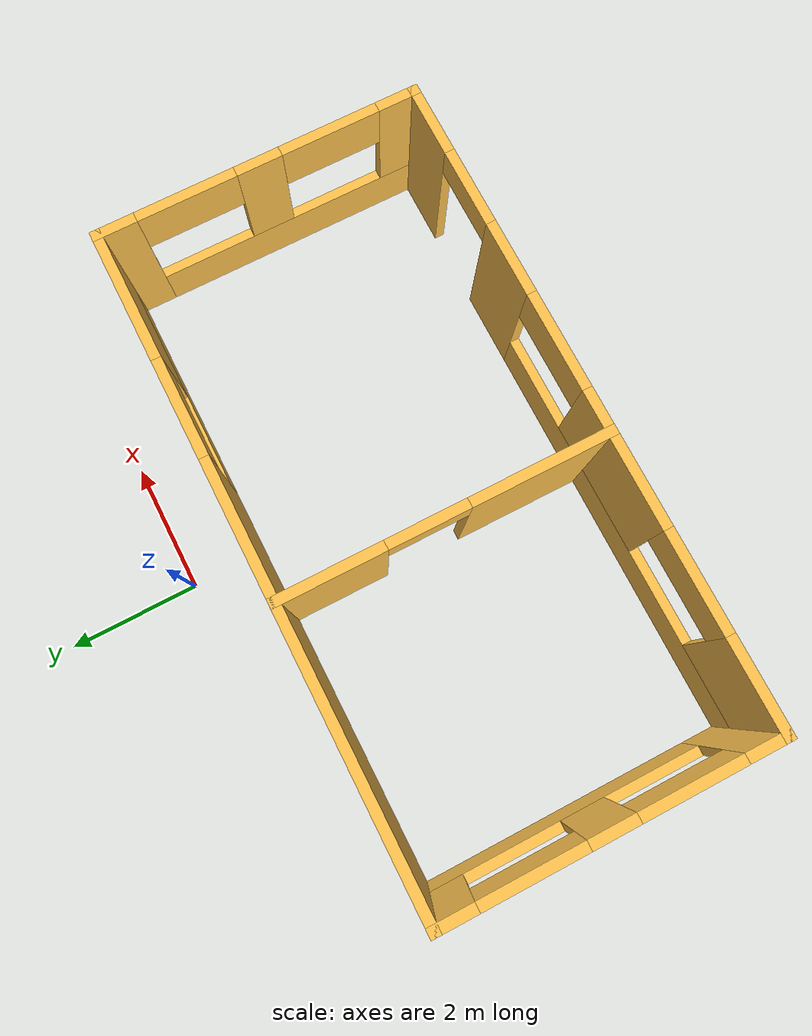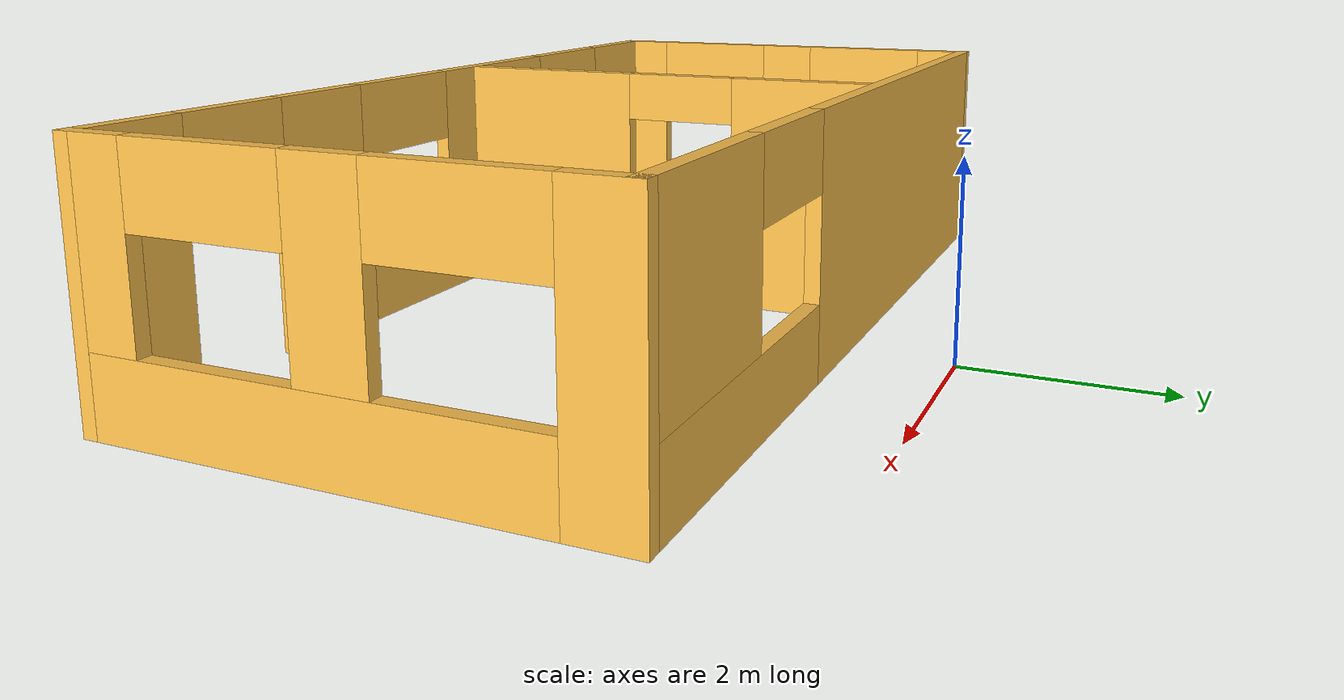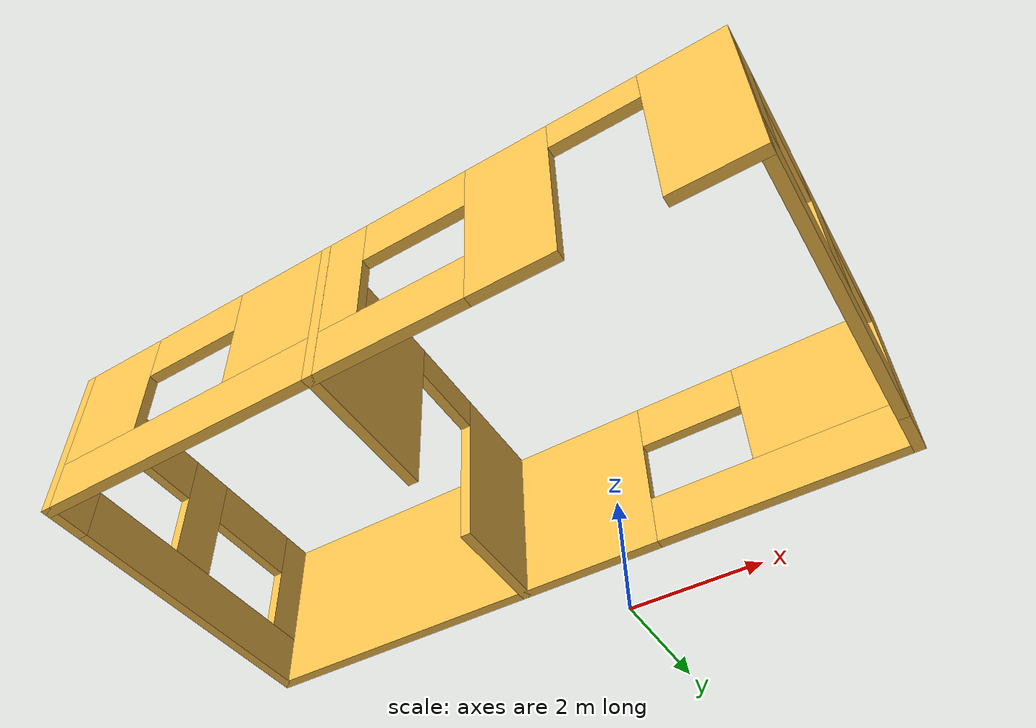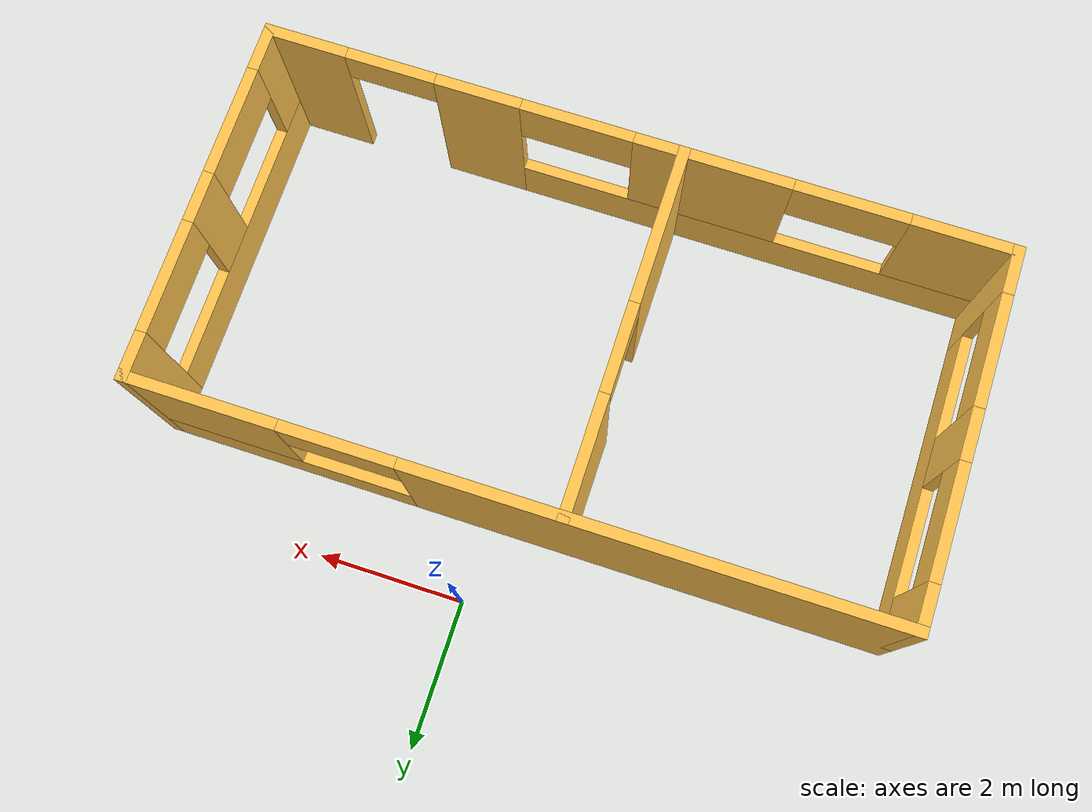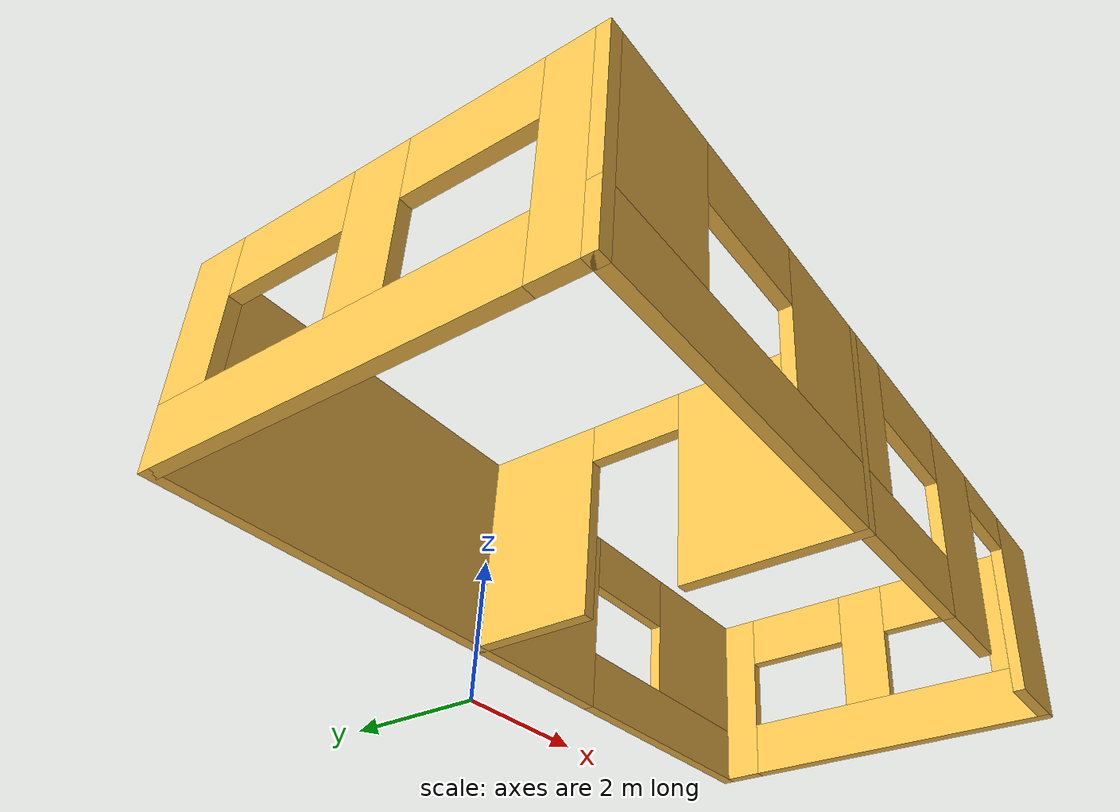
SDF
<?xml version='1.0'?>
<sdf version='1.6'>
  <model name='mybuilding'>
    <pose frame=''>-0.455 -3.52538 0 0 -0 0</pose>
    <link name='Wall_1'>
      <pose frame=''>0 2.42538 0 0 -0 0</pose>
      <visual name='Wall_1_Visual_0'>
        <pose frame=''>-1.77544 0 1.25 0 -0 0</pose>
        <geometry>
          <box>
            <size>6.44911 0.15 2.5</size>
          </box>
        </geometry>
        <material>
          <script>
            <uri>file://media/materials/scripts/gazebo.material</uri>
            <name>Gazebo/Grey</name>
          </script>
          <ambient>1 0.764706 0.305882 1</ambient>
        </material>
        <meta>
          <layer>0</layer>
        </meta>
      </visual>
      <collision name='Wall_1_Collision_0'>
        <geometry>
          <box>
            <size>6.44911 0.15 2.5</size>
          </box>
        </geometry>
        <pose frame=''>-1.77544 0 1.25 0 -0 0</pose>
      </collision>
      <visual name='Wall_1_Visual_1'>
        <pose frame=''>3.22456 0 0.375 0 -0 0</pose>
        <geometry>
          <box>
            <size>3.55089 0.15 0.75</size>
          </box>
        </geometry>
        <material>
          <script>
            <uri>file://media/materials/scripts/gazebo.material</uri>
            <name>Gazebo/Grey</name>
          </script>
          <ambient>1 0.764706 0.305882 1</ambient>
        </material>
        <meta>
          <layer>0</layer>
        </meta>
      </visual>
      <collision name='Wall_1_Collision_1'>
        <geometry>
          <box>
            <size>3.55089 0.15 0.75</size>
          </box>
        </geometry>
        <pose frame=''>3.22456 0 0.375 0 -0 0</pose>
      </collision>
      <visual name='Wall_1_Visual_2'>
        <pose frame=''>3.97456 0 1.625 0 -0 0</pose>
        <geometry>
          <box>
            <size>2.05089 0.15 1.75</size>
          </box>
        </geometry>
        <material>
          <script>
            <uri>file://media/materials/scripts/gazebo.material</uri>
            <name>Gazebo/Grey</name>
          </script>
          <ambient>1 0.764706 0.305882 1</ambient>
        </material>
        <meta>
          <layer>0</layer>
        </meta>
      </visual>
      <collision name='Wall_1_Collision_2'>
        <geometry>
          <box>
            <size>2.05089 0.15 1.75</size>
          </box>
        </geometry>
        <pose frame=''>3.97456 0 1.625 0 -0 0</pose>
      </collision>
      <visual name='Wall_1_Visual_3'>
        <pose frame=''>2.19911 0 2.125 0 -0 0</pose>
        <geometry>
          <box>
            <size>1.5 0.15 0.75</size>
          </box>
        </geometry>
        <material>
          <script>
            <uri>file://media/materials/scripts/gazebo.material</uri>
            <name>Gazebo/Grey</name>
          </script>
          <ambient>1 0.764706 0.305882 1</ambient>
        </material>
        <meta>
          <layer>0</layer>
        </meta>
      </visual>
      <collision name='Wall_1_Collision_3'>
        <geometry>
          <box>
            <size>1.5 0.15 0.75</size>
          </box>
        </geometry>
        <pose frame=''>2.19911 0 2.125 0 -0 0</pose>
      </collision>
    </link>
    <link name='Wall_3'>
      <pose frame=''>4.925 0.00038 0 0 0 -1.5708</pose>
      <visual name='Wall_3_Visual_0'>
        <pose frame=''>-2.1725 0 1.25 0 -0 0</pose>
        <geometry>
          <box>
            <size>0.655006 0.15 2.5</size>
          </box>
        </geometry>
        <material>
          <script>
            <uri>file://media/materials/scripts/gazebo.material</uri>
            <name>Gazebo/Grey</name>
          </script>
          <ambient>1 0.764706 0.305882 1</ambient>
        </material>
        <meta>
          <layer>0</layer>
        </meta>
      </visual>
      <collision name='Wall_3_Collision_0'>
        <geometry>
          <box>
            <size>0.655006 0.15 2.5</size>
          </box>
        </geometry>
        <pose frame=''>-2.1725 0 1.25 0 -0 0</pose>
      </collision>
      <visual name='Wall_3_Visual_1'>
        <pose frame=''>0.327503 0 0.375 0 -0 0</pose>
        <geometry>
          <box>
            <size>4.34499 0.15 0.75</size>
          </box>
        </geometry>
        <material>
          <script>
            <uri>file://media/materials/scripts/gazebo.material</uri>
            <name>Gazebo/Grey</name>
          </script>
          <ambient>1 0.764706 0.305882 1</ambient>
        </material>
        <meta>
          <layer>0</layer>
        </meta>
      </visual>
      <collision name='Wall_3_Collision_1'>
        <geometry>
          <box>
            <size>4.34499 0.15 0.75</size>
          </box>
        </geometry>
        <pose frame=''>0.327503 0 0.375 0 -0 0</pose>
      </collision>
      <visual name='Wall_3_Visual_2'>
        <pose frame=''>-0.001866 0 1.625 0 -0 0</pose>
        <geometry>
          <box>
            <size>0.686258 0.15 1.75</size>
          </box>
        </geometry>
        <material>
          <script>
            <uri>file://media/materials/scripts/gazebo.material</uri>
            <name>Gazebo/Grey</name>
          </script>
          <ambient>1 0.764706 0.305882 1</ambient>
        </material>
        <meta>
          <layer>0</layer>
        </meta>
      </visual>
      <collision name='Wall_3_Collision_2'>
        <geometry>
          <box>
            <size>0.686258 0.15 1.75</size>
          </box>
        </geometry>
        <pose frame=''>-0.001866 0 1.625 0 -0 0</pose>
      </collision>
      <visual name='Wall_3_Visual_3'>
        <pose frame=''>2.17063 0 1.625 0 -0 0</pose>
        <geometry>
          <box>
            <size>0.658737 0.15 1.75</size>
          </box>
        </geometry>
        <material>
          <script>
            <uri>file://media/materials/scripts/gazebo.material</uri>
            <name>Gazebo/Grey</name>
          </script>
          <ambient>1 0.764706 0.305882 1</ambient>
        </material>
        <meta>
          <layer>0</layer>
        </meta>
      </visual>
      <collision name='Wall_3_Collision_3'>
        <geometry>
          <box>
            <size>0.658737 0.15 1.75</size>
          </box>
        </geometry>
        <pose frame=''>2.17063 0 1.625 0 -0 0</pose>
      </collision>
      <visual name='Wall_3_Visual_4'>
        <pose frame=''>-1.09499 0 2.125 0 -0 0</pose>
        <geometry>
          <box>
            <size>1.5 0.15 0.75</size>
          </box>
        </geometry>
        <material>
          <script>
            <uri>file://media/materials/scripts/gazebo.material</uri>
            <name>Gazebo/Grey</name>
          </script>
          <ambient>1 0.764706 0.305882 1</ambient>
        </material>
        <meta>
          <layer>0</layer>
        </meta>
      </visual>
      <collision name='Wall_3_Collision_4'>
        <geometry>
          <box>
            <size>1.5 0.15 0.75</size>
          </box>
        </geometry>
        <pose frame=''>-1.09499 0 2.125 0 -0 0</pose>
      </collision>
      <visual name='Wall_3_Visual_5'>
        <pose frame=''>1.09126 0 2.125 0 -0 0</pose>
        <geometry>
          <box>
            <size>1.5 0.15 0.75</size>
          </box>
        </geometry>
        <material>
          <script>
            <uri>file://media/materials/scripts/gazebo.material</uri>
            <name>Gazebo/Grey</name>
          </script>
          <ambient>1 0.764706 0.305882 1</ambient>
        </material>
        <meta>
          <layer>0</layer>
        </meta>
      </visual>
      <collision name='Wall_3_Collision_5'>
        <geometry>
          <box>
            <size>1.5 0.15 0.75</size>
          </box>
        </geometry>
        <pose frame=''>1.09126 0 2.125 0 -0 0</pose>
      </collision>
    </link>
    <link name='Wall_4'>
      <pose frame=''>0 -2.42462 0 0 -0 3.14159</pose>
      <visual name='Wall_4_Visual_0'>
        <pose frame=''>-4.433 0 1.25 0 -0 0</pose>
        <geometry>
          <box>
            <size>1.134 0.15 2.5</size>
          </box>
        </geometry>
        <material>
          <script>
            <uri>file://media/materials/scripts/gazebo.material</uri>
            <name>Gazebo/Grey</name>
          </script>
          <ambient>1 0.764706 0.305882 1</ambient>
        </material>
        <meta>
          <layer>0</layer>
        </meta>
      </visual>
      <collision name='Wall_4_Collision_0'>
        <geometry>
          <box>
            <size>1.134 0.15 2.5</size>
          </box>
        </geometry>
        <pose frame=''>-4.433 0 1.25 0 -0 0</pose>
      </collision>
      <visual name='Wall_4_Visual_1'>
        <pose frame=''>-2.09047 0 1.25 0 -0 0</pose>
        <geometry>
          <box>
            <size>1.15108 0.15 2.5</size>
          </box>
        </geometry>
        <material>
          <script>
            <uri>file://media/materials/scripts/gazebo.material</uri>
            <name>Gazebo/Grey</name>
          </script>
          <ambient>1 0.764706 0.305882 1</ambient>
        </material>
        <meta>
          <layer>0</layer>
        </meta>
      </visual>
      <collision name='Wall_4_Collision_1'>
        <geometry>
          <box>
            <size>1.15108 0.15 2.5</size>
          </box>
        </geometry>
        <pose frame=''>-2.09047 0 1.25 0 -0 0</pose>
      </collision>
      <visual name='Wall_4_Visual_2'>
        <pose frame=''>1.74254 0 0.375 0 -0 0</pose>
        <geometry>
          <box>
            <size>6.51493 0.15 0.75</size>
          </box>
        </geometry>
        <material>
          <script>
            <uri>file://media/materials/scripts/gazebo.material</uri>
            <name>Gazebo/Grey</name>
          </script>
          <ambient>1 0.764706 0.305882 1</ambient>
        </material>
        <meta>
          <layer>0</layer>
        </meta>
      </visual>
      <collision name='Wall_4_Collision_2'>
        <geometry>
          <box>
            <size>6.51493 0.15 0.75</size>
          </box>
        </geometry>
        <pose frame=''>1.74254 0 0.375 0 -0 0</pose>
      </collision>
      <visual name='Wall_4_Visual_3'>
        <pose frame=''>1.02781 0 1.625 0 -0 0</pose>
        <geometry>
          <box>
            <size>2.08546 0.15 1.75</size>
          </box>
        </geometry>
        <material>
          <script>
            <uri>file://media/materials/scripts/gazebo.material</uri>
            <name>Gazebo/Grey</name>
          </script>
          <ambient>1 0.764706 0.305882 1</ambient>
        </material>
        <meta>
          <layer>0</layer>
        </meta>
      </visual>
      <collision name='Wall_4_Collision_3'>
        <geometry>
          <box>
            <size>2.08546 0.15 1.75</size>
          </box>
        </geometry>
        <pose frame=''>1.02781 0 1.625 0 -0 0</pose>
      </collision>
      <visual name='Wall_4_Visual_4'>
        <pose frame=''>4.28527 0 1.625 0 -0 0</pose>
        <geometry>
          <box>
            <size>1.42946 0.15 1.75</size>
          </box>
        </geometry>
        <material>
          <script>
            <uri>file://media/materials/scripts/gazebo.material</uri>
            <name>Gazebo/Grey</name>
          </script>
          <ambient>1 0.764706 0.305882 1</ambient>
        </material>
        <meta>
          <layer>0</layer>
        </meta>
      </visual>
      <collision name='Wall_4_Collision_4'>
        <geometry>
          <box>
            <size>1.42946 0.15 1.75</size>
          </box>
        </geometry>
        <pose frame=''>4.28527 0 1.625 0 -0 0</pose>
      </collision>
      <visual name='Wall_4_Visual_5'>
        <pose frame=''>-0.764926 0 2.125 0 -0 0</pose>
        <geometry>
          <box>
            <size>1.5 0.15 0.75</size>
          </box>
        </geometry>
        <material>
          <script>
            <uri>file://media/materials/scripts/gazebo.material</uri>
            <name>Gazebo/Grey</name>
          </script>
          <ambient>1 0.764706 0.305882 1</ambient>
        </material>
        <meta>
          <layer>0</layer>
        </meta>
      </visual>
      <collision name='Wall_4_Collision_5'>
        <geometry>
          <box>
            <size>1.5 0.15 0.75</size>
          </box>
        </geometry>
        <pose frame=''>-0.764926 0 2.125 0 -0 0</pose>
      </collision>
      <visual name='Wall_4_Visual_6'>
        <pose frame=''>2.82054 0 2.125 0 -0 0</pose>
        <geometry>
          <box>
            <size>1.5 0.15 0.75</size>
          </box>
        </geometry>
        <material>
          <script>
            <uri>file://media/materials/scripts/gazebo.material</uri>
            <name>Gazebo/Grey</name>
          </script>
          <ambient>1 0.764706 0.305882 1</ambient>
        </material>
        <meta>
          <layer>0</layer>
        </meta>
      </visual>
      <collision name='Wall_4_Collision_6'>
        <geometry>
          <box>
            <size>1.5 0.15 0.75</size>
          </box>
        </geometry>
        <pose frame=''>2.82054 0 2.125 0 -0 0</pose>
      </collision>
      <visual name='Wall_4_Visual_7'>
        <pose frame=''>-3.266 0 2.25 0 -0 0</pose>
        <geometry>
          <box>
            <size>1.2 0.15 0.5</size>
          </box>
        </geometry>
        <material>
          <script>
            <uri>file://media/materials/scripts/gazebo.material</uri>
            <name>Gazebo/Grey</name>
          </script>
          <ambient>1 0.764706 0.305882 1</ambient>
        </material>
        <meta>
          <layer>0</layer>
        </meta>
      </visual>
      <collision name='Wall_4_Collision_7'>
        <geometry>
          <box>
            <size>1.2 0.15 0.5</size>
          </box>
        </geometry>
        <pose frame=''>-3.266 0 2.25 0 -0 0</pose>
      </collision>
    </link>
    <link name='Wall_5'>
      <pose frame=''>-4.925 0.00038 0 0 -0 1.5708</pose>
      <visual name='Wall_5_Visual_0'>
        <pose frame=''>-2.17063 0 1.25 0 -0 0</pose>
        <geometry>
          <box>
            <size>0.658737 0.15 2.5</size>
          </box>
        </geometry>
        <material>
          <script>
            <uri>file://media/materials/scripts/gazebo.material</uri>
            <name>Gazebo/Grey</name>
          </script>
          <ambient>1 0.764706 0.305882 1</ambient>
        </material>
        <meta>
          <layer>0</layer>
        </meta>
      </visual>
      <collision name='Wall_5_Collision_0'>
        <geometry>
          <box>
            <size>0.658737 0.15 2.5</size>
          </box>
        </geometry>
        <pose frame=''>-2.17063 0 1.25 0 -0 0</pose>
      </collision>
      <visual name='Wall_5_Visual_1'>
        <pose frame=''>0.329368 0 0.375 0 -0 0</pose>
        <geometry>
          <box>
            <size>4.34126 0.15 0.75</size>
          </box>
        </geometry>
        <material>
          <script>
            <uri>file://media/materials/scripts/gazebo.material</uri>
            <name>Gazebo/Grey</name>
          </script>
          <ambient>1 0.764706 0.305882 1</ambient>
        </material>
        <meta>
          <layer>0</layer>
        </meta>
      </visual>
      <collision name='Wall_5_Collision_1'>
        <geometry>
          <box>
            <size>4.34126 0.15 0.75</size>
          </box>
        </geometry>
        <pose frame=''>0.329368 0 0.375 0 -0 0</pose>
      </collision>
      <visual name='Wall_5_Visual_2'>
        <pose frame=''>0.001866 0 1.625 0 -0 0</pose>
        <geometry>
          <box>
            <size>0.686258 0.15 1.75</size>
          </box>
        </geometry>
        <material>
          <script>
            <uri>file://media/materials/scripts/gazebo.material</uri>
            <name>Gazebo/Grey</name>
          </script>
          <ambient>1 0.764706 0.305882 1</ambient>
        </material>
        <meta>
          <layer>0</layer>
        </meta>
      </visual>
      <collision name='Wall_5_Collision_2'>
        <geometry>
          <box>
            <size>0.686258 0.15 1.75</size>
          </box>
        </geometry>
        <pose frame=''>0.001866 0 1.625 0 -0 0</pose>
      </collision>
      <visual name='Wall_5_Visual_3'>
        <pose frame=''>2.1725 0 1.625 0 -0 0</pose>
        <geometry>
          <box>
            <size>0.655006 0.15 1.75</size>
          </box>
        </geometry>
        <material>
          <script>
            <uri>file://media/materials/scripts/gazebo.material</uri>
            <name>Gazebo/Grey</name>
          </script>
          <ambient>1 0.764706 0.305882 1</ambient>
        </material>
        <meta>
          <layer>0</layer>
        </meta>
      </visual>
      <collision name='Wall_5_Collision_3'>
        <geometry>
          <box>
            <size>0.655006 0.15 1.75</size>
          </box>
        </geometry>
        <pose frame=''>2.1725 0 1.625 0 -0 0</pose>
      </collision>
      <visual name='Wall_5_Visual_4'>
        <pose frame=''>-1.09126 0 2.125 0 -0 0</pose>
        <geometry>
          <box>
            <size>1.5 0.15 0.75</size>
          </box>
        </geometry>
        <material>
          <script>
            <uri>file://media/materials/scripts/gazebo.material</uri>
            <name>Gazebo/Grey</name>
          </script>
          <ambient>1 0.764706 0.305882 1</ambient>
        </material>
        <meta>
          <layer>0</layer>
        </meta>
      </visual>
      <collision name='Wall_5_Collision_4'>
        <geometry>
          <box>
            <size>1.5 0.15 0.75</size>
          </box>
        </geometry>
        <pose frame=''>-1.09126 0 2.125 0 -0 0</pose>
      </collision>
      <visual name='Wall_5_Visual_5'>
        <pose frame=''>1.09499 0 2.125 0 -0 0</pose>
        <geometry>
          <box>
            <size>1.5 0.15 0.75</size>
          </box>
        </geometry>
        <material>
          <script>
            <uri>file://media/materials/scripts/gazebo.material</uri>
            <name>Gazebo/Grey</name>
          </script>
          <ambient>1 0.764706 0.305882 1</ambient>
        </material>
        <meta>
          <layer>0</layer>
        </meta>
      </visual>
      <collision name='Wall_5_Collision_5'>
        <geometry>
          <box>
            <size>1.5 0.15 0.75</size>
          </box>
        </geometry>
        <pose frame=''>1.09499 0 2.125 0 -0 0</pose>
      </collision>
    </link>
    <link name='Wall_7'>
      <pose frame=''>-0.634279 -0.00038 0 0 0 -1.5708</pose>
      <visual name='Wall_7_Visual_0'>
        <pose frame=''>-1.67812 0 1.25 0 -0 0</pose>
        <geometry>
          <box>
            <size>1.64377 0.15 2.5</size>
          </box>
        </geometry>
        <material>
          <script>
            <uri>file://media/materials/scripts/gazebo.material</uri>
            <name>Gazebo/Grey</name>
          </script>
          <ambient>1 0.764706 0.305882 1</ambient>
        </material>
        <meta>
          <layer>0</layer>
        </meta>
      </visual>
      <collision name='Wall_7_Collision_0'>
        <geometry>
          <box>
            <size>1.64377 0.15 2.5</size>
          </box>
        </geometry>
        <pose frame=''>-1.67812 0 1.25 0 -0 0</pose>
      </collision>
      <visual name='Wall_7_Visual_1'>
        <pose frame=''>1.42188 0 1.25 0 -0 0</pose>
        <geometry>
          <box>
            <size>2.15623 0.15 2.5</size>
          </box>
        </geometry>
        <material>
          <script>
            <uri>file://media/materials/scripts/gazebo.material</uri>
            <name>Gazebo/Grey</name>
          </script>
          <ambient>1 0.764706 0.305882 1</ambient>
        </material>
        <meta>
          <layer>0</layer>
        </meta>
      </visual>
      <collision name='Wall_7_Collision_1'>
        <geometry>
          <box>
            <size>2.15623 0.15 2.5</size>
          </box>
        </geometry>
        <pose frame=''>1.42188 0 1.25 0 -0 0</pose>
      </collision>
      <visual name='Wall_7_Visual_2'>
        <pose frame=''>-0.256232 0 2.25 0 -0 0</pose>
        <geometry>
          <box>
            <size>1.2 0.15 0.5</size>
          </box>
        </geometry>
        <material>
          <script>
            <uri>file://media/materials/scripts/gazebo.material</uri>
            <name>Gazebo/Grey</name>
          </script>
          <ambient>1 0.764706 0.305882 1</ambient>
        </material>
        <meta>
          <layer>0</layer>
        </meta>
      </visual>
      <collision name='Wall_7_Collision_2'>
        <geometry>
          <box>
            <size>1.2 0.15 0.5</size>
          </box>
        </geometry>
        <pose frame=''>-0.256232 0 2.25 0 -0 0</pose>
      </collision>
    </link>
    <static>1</static>
  </model>
</sdf>
